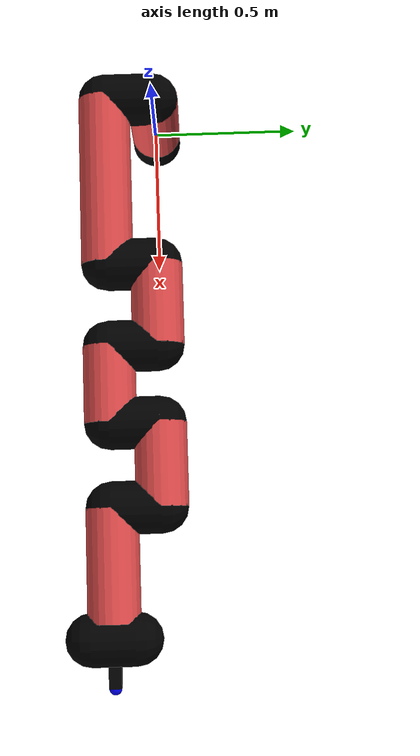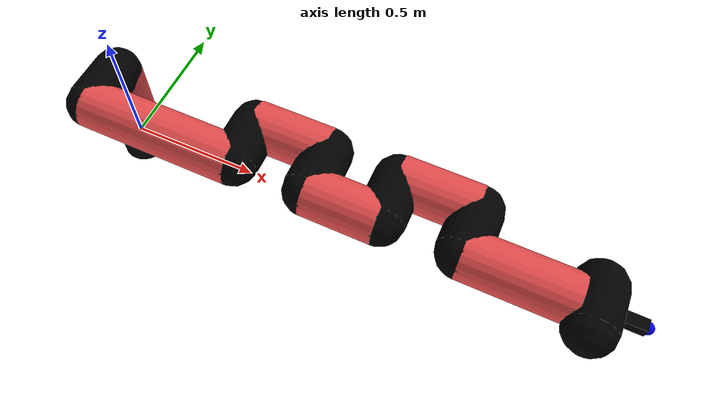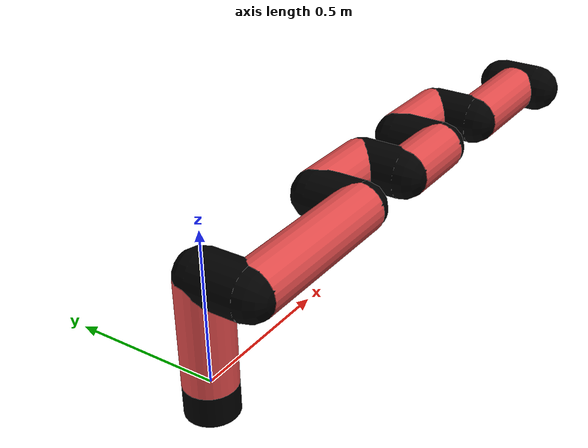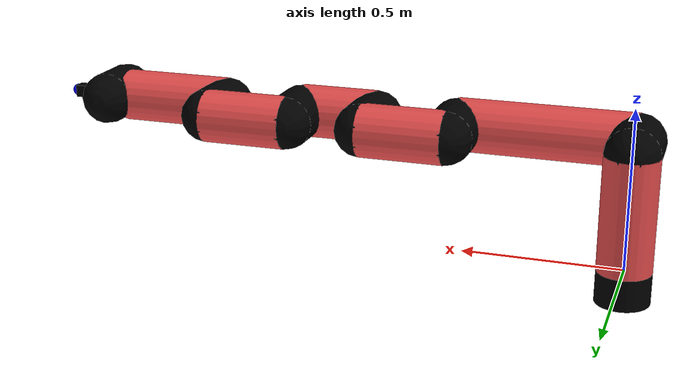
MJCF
<mujoco model="manipulator">
		<compiler angle="degree" coordinate="local" inertiafromgeom="auto" meshdir="meshes/"/>
		<option gravity="0 0 0" integrator="RK4" iterations="30" timestep="0.01"/>

		<default>
		<joint armature="1" limited="true" stiffness="10" damping="15" frictionloss="5.0"/>
		<geom conaffinity="1" condim="3" contype="1" friction=".5 .1 .1" margin="0.002"/>
		<motor ctrllimited="true"/>
		<position ctrllimited="true"/>
		</default>

		<asset>
		<texture builtin="gradient" height="100" rgb1="1.0 1.0 1.0" rgb2="1.0 1.0 1.0" type="skybox" width="100"/>
		<texture builtin="flat" height="32" name="arm_tex" rgb1="0.9 0.3 0.3" type="2d" width="32"/>
		<texture builtin="flat" height="32" name="gripper_tex" rgb1="0.0 0.0 0.0" type="cube" width="32"/>

		<material name="arm_mat" shininess="0.1" specular="0.1" texture="arm_tex"/>
		<material name="gripper_mat" shininess="1" specular="1" texture="gripper_tex"/>
		</asset>

		<worldbody>
		<light cutoff="45" diffuse=".8 .8 .8" dir="0 0.16 -1" directional="false" name="light" pos="0 -2.0 8.0" specular="0.3 0.3 0.3"/>

		<body name="base_link" pos="0 0 -0.1">
		<geom fromto="0 0 0 0 0 0.1" material="arm_mat" name="base_link" rgba="0.0 0.0 0.0 1" size="0.085" type="cylinder"/>
		</body>

		<body name="l1" pos="0 0 0">
<geom fromto="0 0 0 0 0 0.36" material="arm_mat" name="l1" rgba="0.9 0.3 0.3 1" size="0.085" type="cylinder"/>
<geom fromto="0 0 0.36 0 -0.16 0.36" material="arm_mat" name="l1_ex" rgba="0.0 0.0 0.0 1" size="0.085" type="capsule"/>
<joint axis="0 0 1" name="j1" pos="0 0 0" range="-90 90" damping="26.39" frictionloss="11.63"/>

<body name="l2" pos="0 -0.16 0.36">
<geom fromto="0 0 0 0.56 0 0" material="arm_mat" name="l2" rgba="0.9 0.3 0.3 1" size="0.085" type="cylinder"/>
<geom fromto="0.56 0 0 0.56 0.16 0" material="arm_mat" name="l2_ex" rgba="0.0 0.0 0.0 1" size="0.085" type="capsule"/>
<joint axis="0.0 1.0 0.0" name="j2" pos="0 0 0" range="-90 60" damping="34.31" frictionloss="11.92"/>

<body name="l3" pos="0.56 0.16 0">
<geom fromto="0 0 0 0.27 0 0" material="arm_mat" name="l3" rgba="0.9 0.3 0.3 1" size="0.085" type="cylinder"/>
<geom fromto="0.27 0 0 0.27 -0.16 0" material="arm_mat" name="l3_ex" rgba="0.0 0.0 0.0 1" size="0.085" type="capsule"/>
<joint axis="0.0 1.0 0.0" name="j3" pos="0 0 0" range="-30 60" damping="35.02" frictionloss="11.85"/>

<body name="l4" pos="0.27 -0.16 0">
<geom fromto="0 0 0 0.25 0 0" material="arm_mat" name="l4" rgba="0.9 0.3 0.3 1" size="0.085" type="cylinder"/>
<geom fromto="0.25 0 0 0.25 0.16 0" material="arm_mat" name="l4_ex" rgba="0.0 0.0 0.0 1" size="0.085" type="capsule"/>
<joint axis="0.0 1.0 0.0" name="j4" pos="0 0 0" range="-30 60" damping="37.28" frictionloss="11.49"/>

<body name="l5" pos="0.25 0.16 0">
<geom fromto="0 0 0 0.27 0 0" material="arm_mat" name="l5" rgba="0.9 0.3 0.3 1" size="0.085" type="cylinder"/>
<geom fromto="0.27 0 0 0.27 -0.16 0" material="arm_mat" name="l5_ex" rgba="0.0 0.0 0.0 1" size="0.085" type="capsule"/>
<joint axis="0.0 1.0 0.0" name="j5" pos="0 0 0" range="-30 60" damping="34.72" frictionloss="10.8"/>

<body name="l6" pos="0.27 -0.16 0">
<geom fromto="0 0 0 0.36 0 0" material="arm_mat" name="l6" rgba="0.9 0.3 0.3 1" size="0.085" type="cylinder"/>
<joint axis="0.0 1.0 0.0" name="j6" pos="0 0 0" range="-30 60" damping="37.35" frictionloss="10.89"/>

<body name="gripper" pos="0.36 0 0">
<geom fromto="0.05 -0.07 0 0.05 0.07 0" material="gripper_mat" name="gripper" rgba="0.0 0.0 0.0 1" size="0.085" type="capsule"/><joint axis="1 0 0" name="j7" pos="0 0 0" range="-90 90" damping="15" frictionloss="5.0"/><body name="finger" pos="0.1 0 0">
<geom fromto="0 0.0 0 0.1 0.0 0" material="gripper_mat" name="finger" rgba="0.0 0.0 0.0 1" size="0.020 0.06 0.06" type="box"/>
</body>
<site name="current" pos="0.2 0. 0.0" rgba="0. 0. 1.0 1" size="0.02" type="sphere"/>
</body>
</body>
</body>
</body>
</body>
</body>
</body>
</worldbody>
<actuator>
<motor ctrllimited="true" ctrlrange="-1.0 1.0" joint="j1" gear="80.72"/>
<motor ctrllimited="true" ctrlrange="-1.0 1.0" joint="j2" gear="93.53"/>
<motor ctrllimited="true" ctrlrange="-1.0 1.0" joint="j3" gear="85.68"/>
<motor ctrllimited="true" ctrlrange="-1.0 1.0" joint="j4" gear="75.37"/>
<motor ctrllimited="true" ctrlrange="-1.0 1.0" joint="j5" gear="74.98"/>
<motor ctrllimited="true" ctrlrange="-1.0 1.0" joint="j6" gear="93.26"/>
<motor ctrllimited="true" ctrlrange="-1.0 1.0" joint="j7" gear="80"/>
</actuator>
</mujoco>
